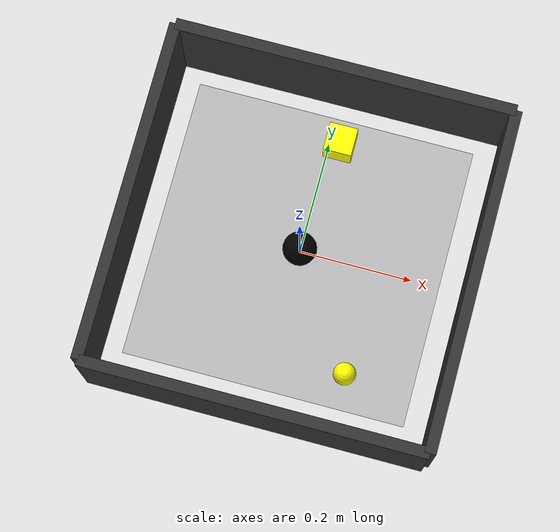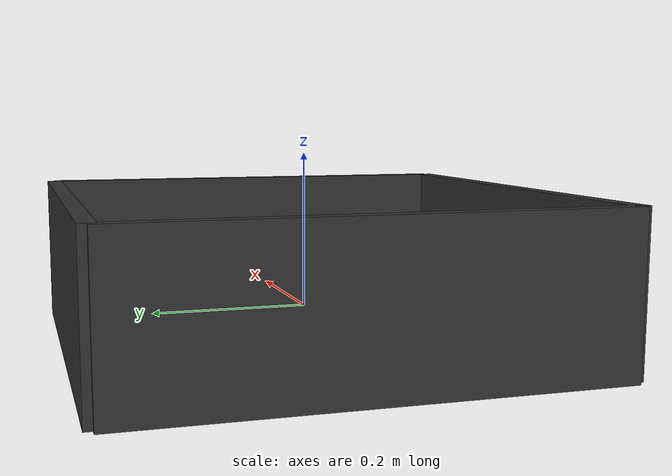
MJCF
<?xml version="1.0" ?>
<mujoco>

 <compiler angle="radian" coordinate="local" inertiafromgeom="auto" meshdir="meshes"/>

 <option gravity="0 0 -9.81" integrator="Euler" iterations="20" timestep="0.02"/>

 <default>

  <joint damping="1"/>

  <geom friction=".5 .1 .1"/>

 </default>

 <asset>

  <material name="floor_mat" reflectance="0" rgba="0.4 0.4 0.4 1" shininess="0.5" specular="0"/>

  <material name="block_mat" reflectance="0" shininess="0.5" specular="0"/>

 </asset>

 <worldbody>

  <camera euler="0 0 0" fovy="75" mode="fixed" name="top" pos="0 0 0.7"/>

  <light ambient="0.2 0.2 0.2" castshadow="false" diffuse="0.8 0.8 0.8" dir="0 0 -1" directional="true" name="light0" pos="0 0 4" specular="0.3 0.3 0.3"/>

  <body name="floor0" pos="0 0 0">
   <geom conaffinity="1" condim="3" contype="1" material="floor_mat" name="floor0" pos="0 0 0" size="0.25 0.25 0.01" type="plane"/>
  </body>
  <body name="object0" pos="0.02 0.20 0.035">
   <joint name="object0:joint" type="free"/>
   <geom conaffinity="1" condim="3" contype="1" mass="0.04" material="block_mat" name="object0" rgba="1 1 0 1" size="0.025 0.025 0.025" type="box"/>
   <site name="object0" pos="0 0 0" rgba="1 1 0 1" size="0.02" type="sphere"/>
  </body>
  <site name="target0" pos="0.13 -0.19 0.02" rgba="1 1 0 1" size="0.02 0.02 0.02" type="sphere"/>
  <body name="wall0" pos="0 0.3 0.05">
   <geom mass="5" name="wall0" rgba="0.2 0.2 0.2 1" size="0.3 0.01 0.1" type="box"/>
  </body>
  <body name="wall1" pos="0.3 0 0.05">
   <geom mass="5" name="wall1" rgba="0.2 0.2 0.2 1" size="0.01 0.3 0.1" type="box"/>
  </body>
  <body name="wall2" pos="0 -0.3 0.05">
   <geom mass="5" name="wall2" rgba="0.2 0.2 0.2 1" size="0.3 0.01 0.1" type="box"/>
  </body>
  <body name="wall3" pos="-0.3 0 0.05">
   <geom mass="5" name="wall3" rgba="0.2 0.2 0.2 1" size="0.01 0.3 0.1" type="box"/>
  </body>
  <body name="agent0" pos="0 0 0.03">
   <joint axis="1 0 0" name="agent0_x" type="slide"/>
   <joint axis="0 1 0" name="agent0_y" type="slide"/>
   <geom conaffinity="1" condim="3" contype="1" mass="3" name="agent" rgba="0 0 0 1" size="0.03" type="sphere"/>
  </body>
 </worldbody>

 <actuator> </actuator>

</mujoco>
